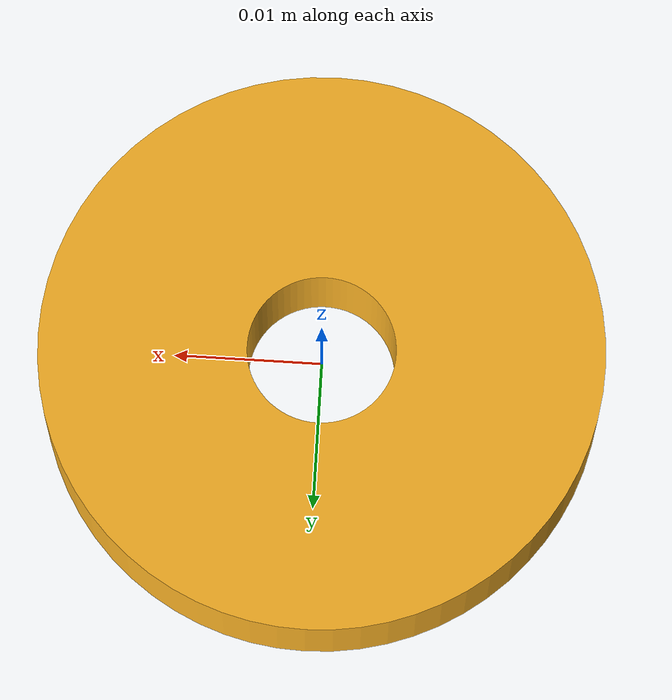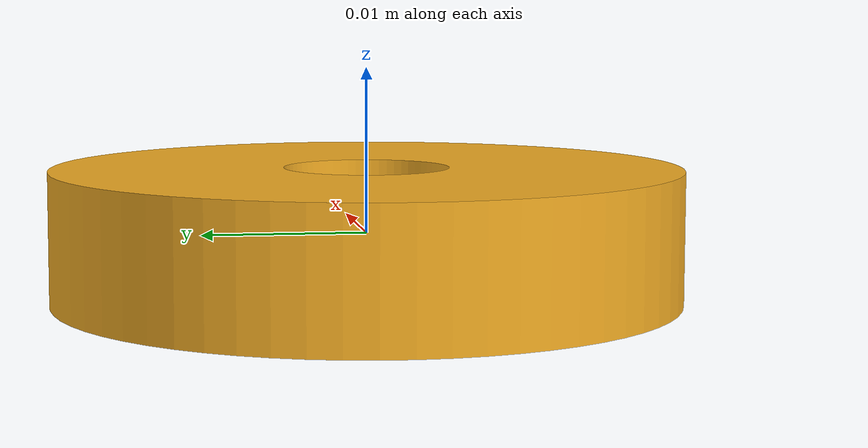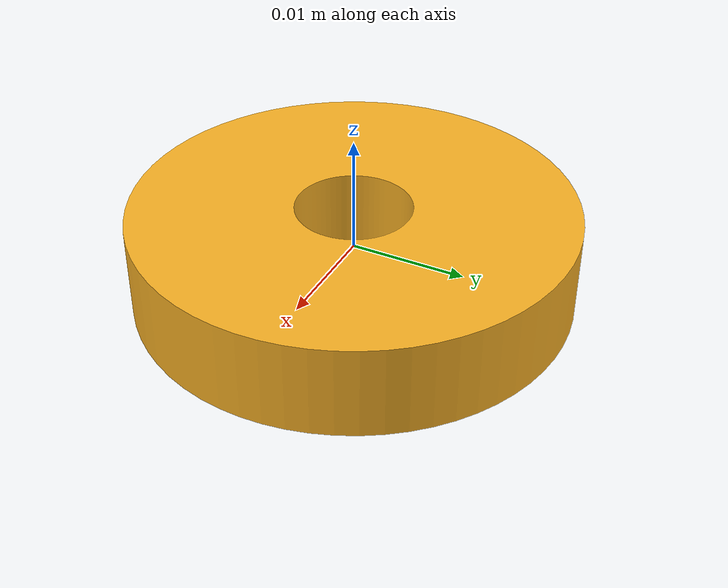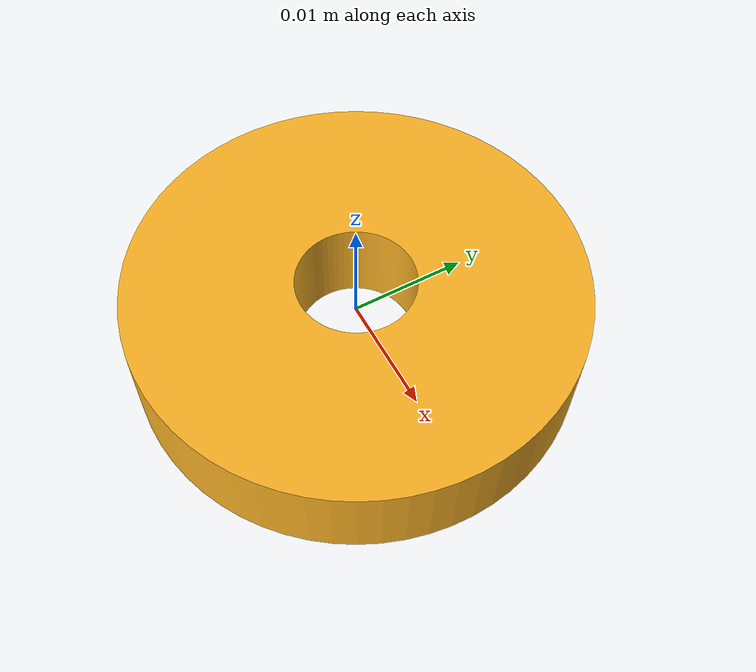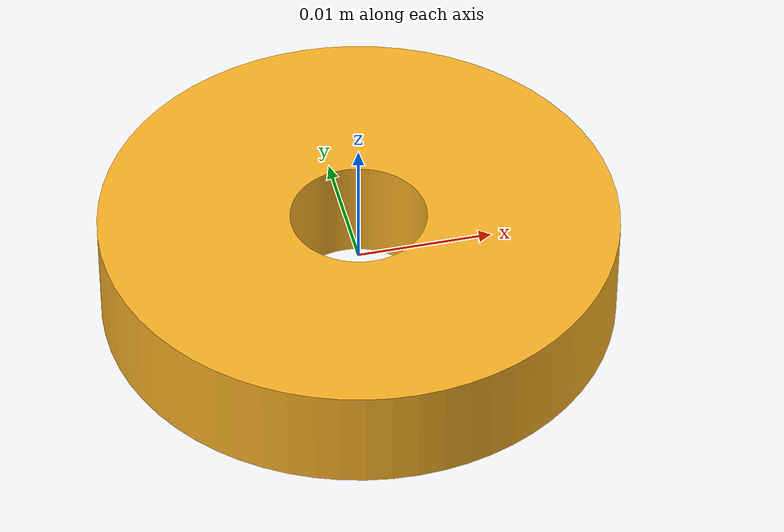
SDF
<sdf version="1.6">
  <model name="hanoi_ring_medium">
    <static>false</static>
    <pose>0 0 0 0 0 0</pose>
    <link name="body">
      <inertial>
        <mass>0.014</mass>
        <inertia>
          <ixx>1.4256666666666666e-06</ixx>
          <iyy>1.4256666666666666e-06</iyy>
          <izz>2.702e-06</izz>
          <ixy>0</ixy>
          <ixz>0</ixz>
          <iyz>0</iyz>
        </inertia>
      </inertial>
      <collision name="collision_0">
        <pose>0.012 0.0 0 0 0 0.0</pose>
        <geometry>
          <box>
            <size>0.013999999999999999 0.005002794908321041 0.008</size>
          </box>
        </geometry>
        <surface>
          <friction>
            <ode>
              <mu>0.8</mu>
              <mu2>0.8</mu2>
            </ode>
          </friction>
        </surface>
      </collision>
      <collision name="collision_1">
        <pose>0.01159110991546882 0.003105828541230249 0 0 0 0.2617993877991494</pose>
        <geometry>
          <box>
            <size>0.013999999999999999 0.005002794908321041 0.008</size>
          </box>
        </geometry>
        <surface>
          <friction>
            <ode>
              <mu>0.8</mu>
              <mu2>0.8</mu2>
            </ode>
          </friction>
        </surface>
      </collision>
      <collision name="collision_2">
        <pose>0.010392304845413265 0.005999999999999999 0 0 0 0.5235987755982988</pose>
        <geometry>
          <box>
            <size>0.013999999999999999 0.005002794908321041 0.008</size>
          </box>
        </geometry>
        <surface>
          <friction>
            <ode>
              <mu>0.8</mu>
              <mu2>0.8</mu2>
            </ode>
          </friction>
        </surface>
      </collision>
      <collision name="collision_3">
        <pose>0.008485281374238571 0.00848528137423857 0 0 0 0.7853981633974483</pose>
        <geometry>
          <box>
            <size>0.013999999999999999 0.005002794908321041 0.008</size>
          </box>
        </geometry>
        <surface>
          <friction>
            <ode>
              <mu>0.8</mu>
              <mu2>0.8</mu2>
            </ode>
          </friction>
        </surface>
      </collision>
      <collision name="collision_4">
        <pose>0.006000000000000002 0.010392304845413263 0 0 0 1.0471975511965976</pose>
        <geometry>
          <box>
            <size>0.013999999999999999 0.005002794908321041 0.008</size>
          </box>
        </geometry>
        <surface>
          <friction>
            <ode>
              <mu>0.8</mu>
              <mu2>0.8</mu2>
            </ode>
          </friction>
        </surface>
      </collision>
      <collision name="collision_5">
        <pose>0.003105828541230249 0.01159110991546882 0 0 0 1.3089969389957472</pose>
        <geometry>
          <box>
            <size>0.013999999999999999 0.005002794908321041 0.008</size>
          </box>
        </geometry>
        <surface>
          <friction>
            <ode>
              <mu>0.8</mu>
              <mu2>0.8</mu2>
            </ode>
          </friction>
        </surface>
      </collision>
      <collision name="collision_6">
        <pose>7.347880794884119e-19 0.012 0 0 0 1.5707963267948966</pose>
        <geometry>
          <box>
            <size>0.013999999999999999 0.005002794908321041 0.008</size>
          </box>
        </geometry>
        <surface>
          <friction>
            <ode>
              <mu>0.8</mu>
              <mu2>0.8</mu2>
            </ode>
          </friction>
        </surface>
      </collision>
      <collision name="collision_7">
        <pose>-0.0031058285412302474 0.01159110991546882 0 0 0 1.832595714594046</pose>
        <geometry>
          <box>
            <size>0.013999999999999999 0.005002794908321041 0.008</size>
          </box>
        </geometry>
        <surface>
          <friction>
            <ode>
              <mu>0.8</mu>
              <mu2>0.8</mu2>
            </ode>
          </friction>
        </surface>
      </collision>
      <collision name="collision_8">
        <pose>-0.0059999999999999975 0.010392304845413265 0 0 0 2.0943951023931953</pose>
        <geometry>
          <box>
            <size>0.013999999999999999 0.005002794908321041 0.008</size>
          </box>
        </geometry>
        <surface>
          <friction>
            <ode>
              <mu>0.8</mu>
              <mu2>0.8</mu2>
            </ode>
          </friction>
        </surface>
      </collision>
      <collision name="collision_9">
        <pose>-0.00848528137423857 0.008485281374238571 0 0 0 2.356194490192345</pose>
        <geometry>
          <box>
            <size>0.013999999999999999 0.005002794908321041 0.008</size>
          </box>
        </geometry>
        <surface>
          <friction>
            <ode>
              <mu>0.8</mu>
              <mu2>0.8</mu2>
            </ode>
          </friction>
        </surface>
      </collision>
      <collision name="collision_10">
        <pose>-0.010392304845413265 0.005999999999999999 0 0 0 2.6179938779914944</pose>
        <geometry>
          <box>
            <size>0.013999999999999999 0.005002794908321041 0.008</size>
          </box>
        </geometry>
        <surface>
          <friction>
            <ode>
              <mu>0.8</mu>
              <mu2>0.8</mu2>
            </ode>
          </friction>
        </surface>
      </collision>
      <collision name="collision_11">
        <pose>-0.01159110991546882 0.003105828541230252 0 0 0 2.8797932657906435</pose>
        <geometry>
          <box>
            <size>0.013999999999999999 0.005002794908321041 0.008</size>
          </box>
        </geometry>
        <surface>
          <friction>
            <ode>
              <mu>0.8</mu>
              <mu2>0.8</mu2>
            </ode>
          </friction>
        </surface>
      </collision>
      <collision name="collision_12">
        <pose>-0.012 1.4695761589768239e-18 0 0 0 3.141592653589793</pose>
        <geometry>
          <box>
            <size>0.013999999999999999 0.005002794908321041 0.008</size>
          </box>
        </geometry>
        <surface>
          <friction>
            <ode>
              <mu>0.8</mu>
              <mu2>0.8</mu2>
            </ode>
          </friction>
        </surface>
      </collision>
      <collision name="collision_13">
        <pose>-0.01159110991546882 -0.0031058285412302496 0 0 0 3.4033920413889427</pose>
        <geometry>
          <box>
            <size>0.013999999999999999 0.005002794908321041 0.008</size>
          </box>
        </geometry>
        <surface>
          <friction>
            <ode>
              <mu>0.8</mu>
              <mu2>0.8</mu2>
            </ode>
          </friction>
        </surface>
      </collision>
      <collision name="collision_14">
        <pose>-0.010392304845413265 -0.005999999999999997 0 0 0 3.665191429188092</pose>
        <geometry>
          <box>
            <size>0.013999999999999999 0.005002794908321041 0.008</size>
          </box>
        </geometry>
        <surface>
          <friction>
            <ode>
              <mu>0.8</mu>
              <mu2>0.8</mu2>
            </ode>
          </friction>
        </surface>
      </collision>
      <collision name="collision_15">
        <pose>-0.008485281374238575 -0.008485281374238566 0 0 0 3.926990816987241</pose>
        <geometry>
          <box>
            <size>0.013999999999999999 0.005002794908321041 0.008</size>
          </box>
        </geometry>
        <surface>
          <friction>
            <ode>
              <mu>0.8</mu>
              <mu2>0.8</mu2>
            </ode>
          </friction>
        </surface>
      </collision>
      <collision name="collision_16">
        <pose>-0.006000000000000005 -0.01039230484541326 0 0 0 4.1887902047863905</pose>
        <geometry>
          <box>
            <size>0.013999999999999999 0.005002794908321041 0.008</size>
          </box>
        </geometry>
        <surface>
          <friction>
            <ode>
              <mu>0.8</mu>
              <mu2>0.8</mu2>
            </ode>
          </friction>
        </surface>
      </collision>
      <collision name="collision_17">
        <pose>-0.0031058285412302474 -0.01159110991546882 0 0 0 4.4505895925855405</pose>
        <geometry>
          <box>
            <size>0.013999999999999999 0.005002794908321041 0.008</size>
          </box>
        </geometry>
        <surface>
          <friction>
            <ode>
              <mu>0.8</mu>
              <mu2>0.8</mu2>
            </ode>
          </friction>
        </surface>
      </collision>
      <collision name="collision_18">
        <pose>-2.2043642384652355e-18 -0.012 0 0 0 4.71238898038469</pose>
        <geometry>
          <box>
            <size>0.013999999999999999 0.005002794908321041 0.008</size>
          </box>
        </geometry>
        <surface>
          <friction>
            <ode>
              <mu>0.8</mu>
              <mu2>0.8</mu2>
            </ode>
          </friction>
        </surface>
      </collision>
      <collision name="collision_19">
        <pose>0.0031058285412302435 -0.011591109915468821 0 0 0 4.974188368183839</pose>
        <geometry>
          <box>
            <size>0.013999999999999999 0.005002794908321041 0.008</size>
          </box>
        </geometry>
        <surface>
          <friction>
            <ode>
              <mu>0.8</mu>
              <mu2>0.8</mu2>
            </ode>
          </friction>
        </surface>
      </collision>
      <collision name="collision_20">
        <pose>0.006000000000000002 -0.010392304845413263 0 0 0 5.235987755982989</pose>
        <geometry>
          <box>
            <size>0.013999999999999999 0.005002794908321041 0.008</size>
          </box>
        </geometry>
        <surface>
          <friction>
            <ode>
              <mu>0.8</mu>
              <mu2>0.8</mu2>
            </ode>
          </friction>
        </surface>
      </collision>
      <collision name="collision_21">
        <pose>0.008485281374238568 -0.008485281374238573 0 0 0 5.497787143782138</pose>
        <geometry>
          <box>
            <size>0.013999999999999999 0.005002794908321041 0.008</size>
          </box>
        </geometry>
        <surface>
          <friction>
            <ode>
              <mu>0.8</mu>
              <mu2>0.8</mu2>
            </ode>
          </friction>
        </surface>
      </collision>
      <collision name="collision_22">
        <pose>0.01039230484541326 -0.006000000000000005 0 0 0 5.759586531581287</pose>
        <geometry>
          <box>
            <size>0.013999999999999999 0.005002794908321041 0.008</size>
          </box>
        </geometry>
        <surface>
          <friction>
            <ode>
              <mu>0.8</mu>
              <mu2>0.8</mu2>
            </ode>
          </friction>
        </surface>
      </collision>
      <collision name="collision_23">
        <pose>0.011591109915468818 -0.003105828541230259 0 0 0 6.021385919380436</pose>
        <geometry>
          <box>
            <size>0.013999999999999999 0.005002794908321041 0.008</size>
          </box>
        </geometry>
        <surface>
          <friction>
            <ode>
              <mu>0.8</mu>
              <mu2>0.8</mu2>
            </ode>
          </friction>
        </surface>
      </collision>
      <visual name="ring_visual">
        <geometry>
          <mesh>
            <uri>model://hanoi_ring_medium/meshes/ring.stl</uri>
          </mesh>
        </geometry>
        <material>
          <ambient>0.97 0.69 0.14 1</ambient>
          <diffuse>0.97 0.69 0.14 1</diffuse>
        </material>
      </visual>
    </link>
  </model>
</sdf>
